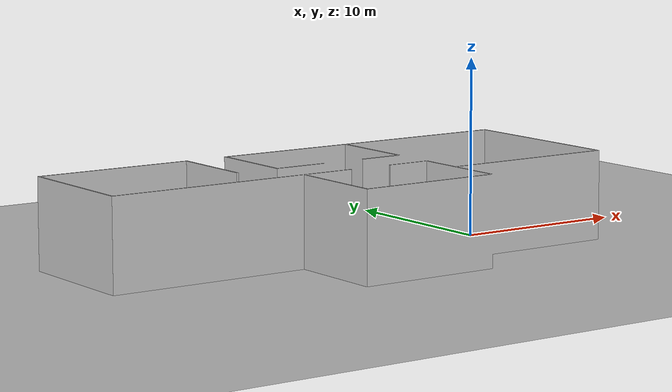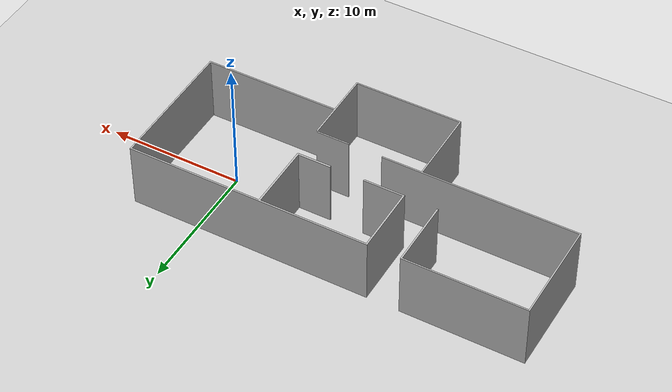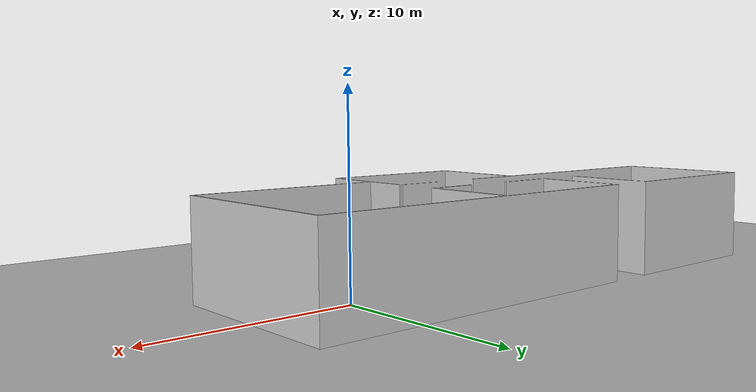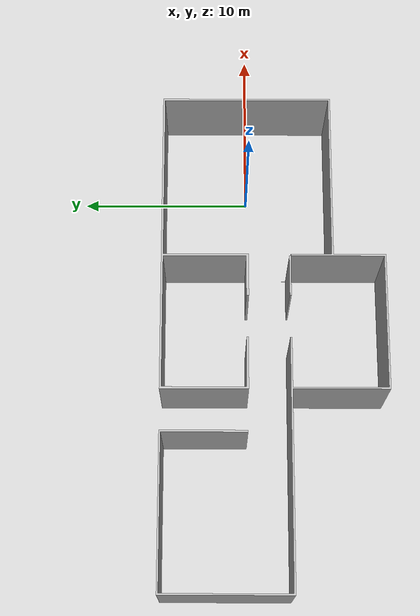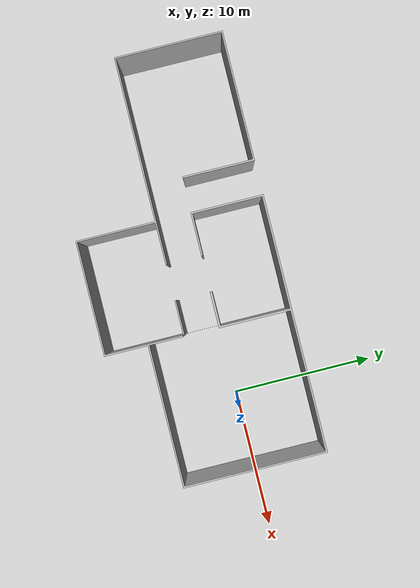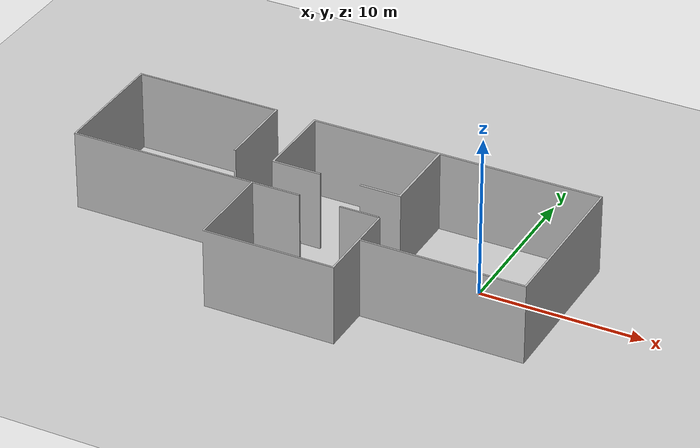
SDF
<?xml version="1.0"?>
<sdf version="1.5">

    <include>
      <uri>model://sun</uri>
    </include>

    <model name='ground_plane'>
      <static>1</static>
      <link name='link'>
        <collision name='collision'>
          <geometry>
            <plane>
              <normal>0 0 1</normal>
              <size>100 100</size>
            </plane>
          </geometry>
          <surface>
            <friction>
              <ode>
                <mu>100</mu>
                <mu2>50</mu2>
              </ode>
              <torsional>
                <ode/>
              </torsional>
            </friction>
            <contact>
              <ode/>
            </contact>
            <bounce/>
          </surface>
          <max_contacts>10</max_contacts>
        </collision>
        <visual name='visual'>
          <cast_shadows>0</cast_shadows>
          <geometry>
            <plane>
              <normal>0 0 1</normal>
              <size>100 100</size>
            </plane>
          </geometry>
          <material>
            <script>
              <uri>file://media/materials/scripts/gazebo.material</uri>
              <name>Gazebo/Grey</name>
            </script>
          </material>
        </visual>
        <self_collide>0</self_collide>
        <enable_wind>0</enable_wind>
        <kinematic>0</kinematic>
      </link>
    </model>

    <model name="apartment_p">
        <static> true </static>
        <pose> 0 0 0 0 0 0 </pose>
        <link name="base">
            <visual name="apartment">
                <geometry>
                    <mesh><uri> model://apartment_p/meshes/apartment.stl </uri></mesh>
                </geometry>
            </visual>
        </link>
    </model>
</sdf>
